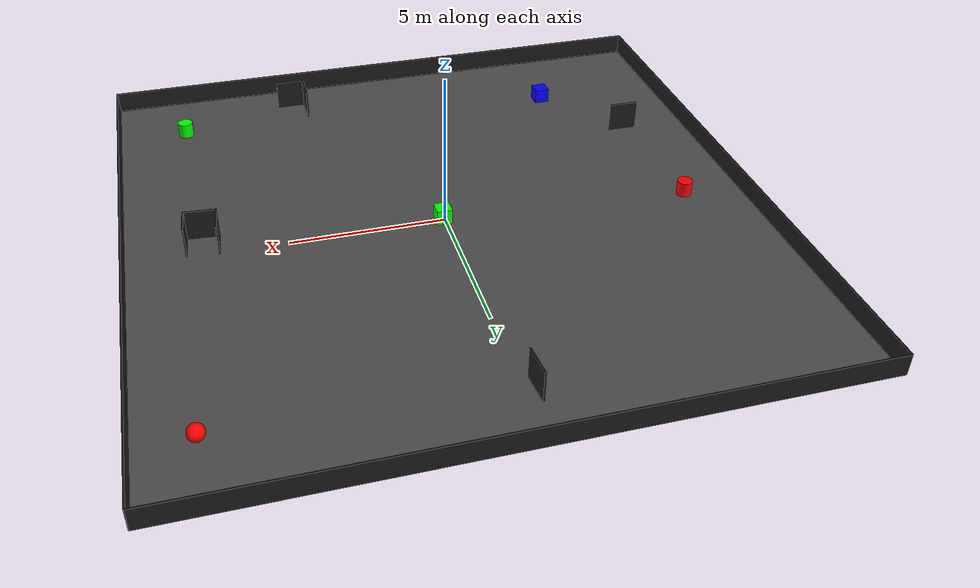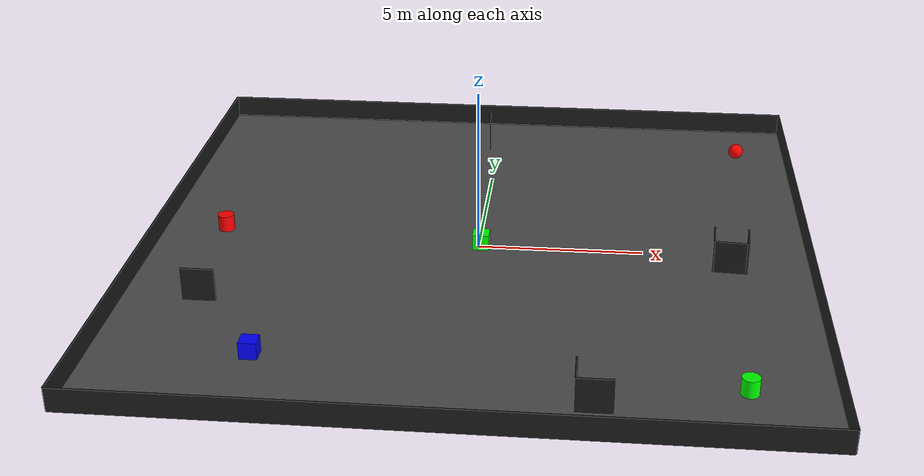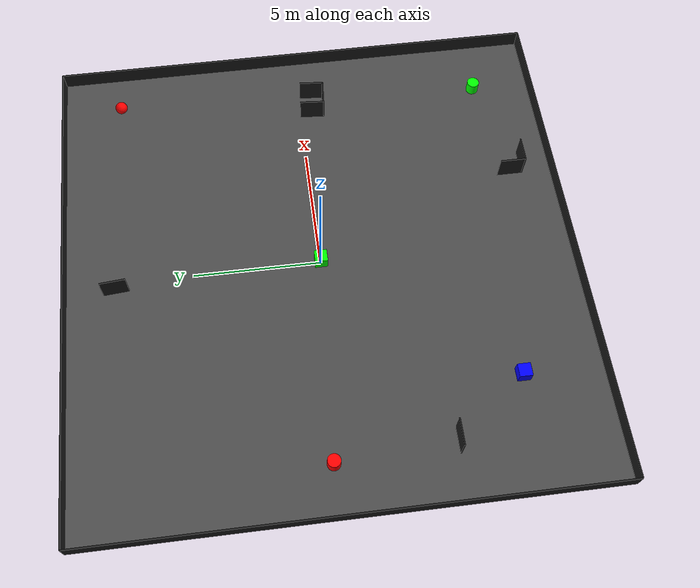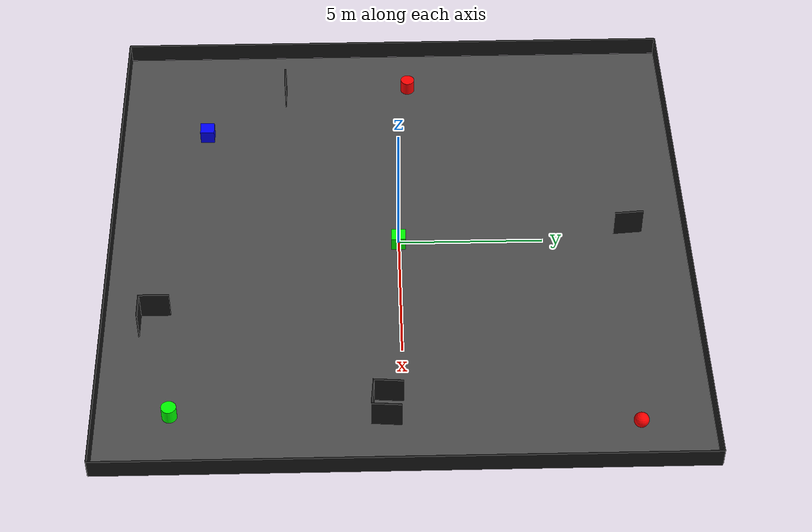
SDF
<sdf version="1.6">
 <world name="default">
  <model name="labrob_ground">
   <static>1</static>
   <link name="link">
    <collision name="collision">
     <geometry><plane><normal>0 0 1</normal><size>20 20</size></plane></geometry>
     <surface><contact><collide_bitmask>2</collide_bitmask></contact></surface>
    </collision>
    <visual name="visual">
     <cast_shadows>0</cast_shadows>
     <geometry><plane><normal>0 0 1</normal><size>20 20</size></plane></geometry>
     <material>
      <script>
       <uri>model://labrob_ground/materials/scripts/</uri>
       <uri>model://labrob_ground/materials/textures/</uri>
       <name>Labrob/AsphaltGround</name>
      </script>
     </material>
    </visual>
   </link>
  </model>
  <light name="sun" type="directional">
   <pose>0 0 10 0 -0 0</pose>
   <diffuse>0.8 0.8 0.8 1</diffuse>
   <specular>0.1 0.1 0.1 1</specular>
   <attenuation>
    <range>1000</range>
    <constant>0.9</constant>
    <linear>0.01</linear>
    <quadratic>0.001</quadratic>
   </attenuation>
   <direction>-0.5 0.5 -1</direction>
  </light>
  <model name="borders">
   <static>1</static>
   <link name="chassis_pos_x">
    <pose>10 0 0.35 0 -0 1.57079</pose>
    <collision name="collision_pos_x"><geometry><box><size>20 0.05 0.7</size></box></geometry></collision>
    <visual name="visual">
     <geometry><box><size>20 0.05 0.7</size></box></geometry>
     <material>
      <ambient>0.1 0.1 0.1 1</ambient>
      <diffuse>0.1 0.1 0.1 1</diffuse>
      <specular>0.1 0.1 0.1 1</specular>
      <emissive>0 0 0 0</emissive>
     </material>
    </visual>
    <sensor name="contact_sensor_1" type="contact">
     <plugin name="my_contact_plugin" filename="libgazebo_ros_bumper.so">
      <bumperTopicName>border_bumper</bumperTopicName>
      <frameName>world</frameName>
     </plugin>
     <contact><collision>collision_pos_x</collision><topic>__default_topic__</topic></contact>
    </sensor>
   </link>
   <link name="chassis_neg_x">
    <pose>-10 0 0.35 0 -0 1.57079</pose>
    <collision name="collision_neg_x"><geometry><box><size>20 0.05 0.7</size></box></geometry></collision>
    <visual name="visual">
     <geometry><box><size>20 0.05 0.7</size></box></geometry>
     <material>
      <ambient>0.1 0.1 0.1 1</ambient>
      <diffuse>0.1 0.1 0.1 1</diffuse>
      <specular>0.1 0.1 0.1 1</specular>
      <emissive>0 0 0 0</emissive>
     </material>
    </visual>
    <sensor name="contact_sensor_2" type="contact">
     <plugin name="my_contact_plugin" filename="libgazebo_ros_bumper.so">
      <bumperTopicName>border_bumper</bumperTopicName>
      <frameName>world</frameName>
     </plugin>
     <contact><collision>collision_neg_x</collision><topic>__default_topic__</topic></contact>
    </sensor>
   </link>
   <link name="chassis_pos_y">
    <pose>0 10 0.35 0 -0 0</pose>
    <collision name="collision_pos_y"><geometry><box><size>20 0.05 0.7</size></box></geometry></collision>
    <visual name="visual">
     <geometry><box><size>20 0.05 0.7</size></box></geometry>
     <material>
      <ambient>0.1 0.1 0.1 1</ambient>
      <diffuse>0.1 0.1 0.1 1</diffuse>
      <specular>0.1 0.1 0.1 1</specular>
      <emissive>0 0 0 0</emissive>
     </material>
    </visual>
    <sensor name="contact_sensor_3" type="contact">
     <plugin name="my_contact_plugin" filename="libgazebo_ros_bumper.so">
      <bumperTopicName>border_bumper</bumperTopicName>
      <frameName>world</frameName>
     </plugin>
     <contact><collision>collision_pos_y</collision><topic>__default_topic__</topic></contact>
    </sensor>
   </link>
   <link name="chassis_neg_y">
    <pose>0 -10 0.35 0 -0 0</pose>
    <collision name="collision_neg_y"><geometry><box><size>20 0.05 0.7</size></box></geometry></collision>
    <visual name="visual">
     <geometry><box><size>20 0.05 0.7</size></box></geometry>
     <material>
      <ambient>0.1 0.1 0.1 1</ambient>
      <diffuse>0.1 0.1 0.1 1</diffuse>
      <specular>0.1 0.1 0.1 1</specular>
      <emissive>0 0 0 0</emissive>
     </material>
    </visual>
    <sensor name="contact_sensor_4" type="contact">
     <plugin name="my_contact_plugin" filename="libgazebo_ros_bumper.so">
      <bumperTopicName>border_bumper</bumperTopicName>
      <frameName>world</frameName>
     </plugin>
     <contact><collision>collision_neg_y</collision><topic>__default_topic__</topic></contact>
    </sensor>
   </link>
  </model>
  <gravity>0 0 -9.8</gravity>
  <magnetic_field>6e-06 2.3e-05 -4.2e-05</magnetic_field>
  <atmosphere type="adiabatic"/>
  <physics name="default_physics" default="0" type="ode">
   <max_step_size>0.001</max_step_size>
   <real_time_factor>1</real_time_factor>
   <real_time_update_rate>1000</real_time_update_rate>
  </physics>
  <scene><ambient>0.4 0.4 0.4 1</ambient><background>0.7 0.7 0.7 1</background><shadows>1</shadows></scene>
  <spherical_coordinates>
   <surface_model>EARTH_WGS84</surface_model>
   <latitude_deg>0</latitude_deg>
   <longitude_deg>0</longitude_deg>
   <elevation>0</elevation>
   <heading_deg>0</heading_deg>
  </spherical_coordinates>
  <model name="barrier_1">
   <static>1</static>
   <link name="chassis">
    <pose>0 0 0.5 0 -0 0</pose>
    <collision name="barrier_collision"><geometry><box><size>1 0.05 1</size></box></geometry></collision>
    <visual name="visual">
     <geometry><box><size>1 0.05 1</size></box></geometry>
     <material>
      <ambient>0.1 0.1 0.1 1</ambient>
      <diffuse>0.1 0.1 0.1 1</diffuse>
      <specular>0.1 0.1 0.1 1</specular>
      <emissive>0 0 0 0</emissive>
     </material>
    </visual>
    <sensor name="contact_sensor_1" type="contact">
     <plugin name="my_contact_plugin" filename="libgazebo_ros_bumper.so">
      <bumperTopicName>obstacle_bumper</bumperTopicName>
      <frameName>world</frameName>
     </plugin>
     <contact><collision>barrier_collision</collision><topic>__default_topic__</topic></contact>
    </sensor>
   </link>
   <pose>-7.69751 -4.05922 0 0 -0 0</pose>
  </model>
  <model name="barrier_2">
   <static>1</static>
   <link name="chassis">
    <pose>0 0 0.5 0 -0 0</pose>
    <collision name="barrier_collision"><geometry><box><size>1 0.05 1</size></box></geometry></collision>
    <visual name="visual">
     <geometry><box><size>1 0.05 1</size></box></geometry>
     <material>
      <ambient>0.1 0.1 0.1 1</ambient>
      <diffuse>0.1 0.1 0.1 1</diffuse>
      <specular>0.1 0.1 0.1 1</specular>
      <emissive>0 0 0 0</emissive>
     </material>
    </visual>
    <collision name="barrier_collision2">
     <pose>-0.475 0.525 0 0 -0 1.57</pose>
     <geometry><box><size>1 0.05 1</size></box></geometry>
    </collision>
    <visual name="visual2">
     <pose>-0.475 0.525 0 0 -0 1.57</pose>
     <geometry><box><size>1 0.05 1</size></box></geometry>
     <material>
      <ambient>0.1 0.1 0.1 1</ambient>
      <diffuse>0.1 0.1 0.1 1</diffuse>
      <specular>0.1 0.1 0.1 1</specular>
      <emissive>0 0 0 0</emissive>
     </material>
    </visual>
    <sensor name="contact_sensor_1" type="contact">
     <plugin name="my_contact_plugin" filename="libgazebo_ros_bumper.so">
      <bumperTopicName>obstacle_bumper</bumperTopicName>
      <frameName>world</frameName>
     </plugin>
     <contact><collision>barrier_collision</collision><topic>__default_topic__</topic></contact>
    </sensor>
    <sensor name="contact_sensor_2" type="contact">
     <plugin name="my_contact_plugin" filename="libgazebo_ros_bumper.so">
      <bumperTopicName>obstacle_bumper</bumperTopicName>
      <frameName>world</frameName>
     </plugin>
     <contact><collision>barrier_collision2</collision><topic>__default_topic__</topic></contact>
    </sensor>
   </link>
   <pose>3.70115 -8.7928 0 0 -0 0</pose>
  </model>
  <model name="barrier_3">
   <static>1</static>
   <link name="chassis">
    <pose>0 0 0.5 0 -0 0</pose>
    <collision name="collision"><geometry><box><size>1 0.05 1</size></box></geometry></collision>
    <visual name="visual">
     <geometry><box><size>1 0.05 1</size></box></geometry>
     <material>
      <ambient>0.1 0.1 0.1 1</ambient>
      <diffuse>0.1 0.1 0.1 1</diffuse>
      <specular>0.1 0.1 0.1 1</specular>
      <emissive>0 0 0 0</emissive>
     </material>
    </visual>
    <collision name="collision2">
     <pose>-0.475 0.525 0 0 -0 1.57</pose>
     <geometry><box><size>1 0.05 1</size></box></geometry>
    </collision>
    <visual name="visual2">
     <pose>-0.475 0.525 0 0 -0 1.57</pose>
     <geometry><box><size>1 0.05 1</size></box></geometry>
     <material>
      <ambient>0.1 0.1 0.1 1</ambient>
      <diffuse>0.1 0.1 0.1 1</diffuse>
      <specular>0.1 0.1 0.1 1</specular>
      <emissive>0 0 0 0</emissive>
     </material>
    </visual>
    <collision name="collision3">
     <pose>0 1 0 0 -0 0</pose>
     <geometry><box><size>1 0.05 1</size></box></geometry>
    </collision>
    <visual name="visual3">
     <pose>0 1 0 0 -0 0</pose>
     <geometry><box><size>1 0.05 1</size></box></geometry>
     <material>
      <ambient>0.1 0.1 0.1 1</ambient>
      <diffuse>0.1 0.1 0.1 1</diffuse>
      <specular>0.1 0.1 0.1 1</specular>
      <emissive>0 0 0 0</emissive>
     </material>
    </visual>
    <sensor name="contact_sensor_1" type="contact">
     <plugin name="my_contact_plugin" filename="libgazebo_ros_bumper.so">
      <bumperTopicName>obstacle_bumper</bumperTopicName>
      <frameName>world</frameName>
     </plugin>
     <contact><collision>collision</collision><topic>__default_topic__</topic></contact>
    </sensor>
    <sensor name="contact_sensor_2" type="contact">
     <plugin name="my_contact_plugin" filename="libgazebo_ros_bumper.so">
      <bumperTopicName>obstacle_bumper</bumperTopicName>
      <frameName>world</frameName>
     </plugin>
     <contact><collision>collision2</collision><topic>__default_topic__</topic></contact>
    </sensor>
    <sensor name="contact_sensor_3" type="contact">
     <plugin name="my_contact_plugin" filename="libgazebo_ros_bumper.so">
      <bumperTopicName>obstacle_bumper</bumperTopicName>
      <frameName>world</frameName>
     </plugin>
     <contact><collision>collision3</collision><topic>__default_topic__</topic></contact>
    </sensor>
   </link>
   <pose>8.10458 -0.573546 0 0 -0 1.49566</pose>
  </model>
  <model name="cube_blue">
   <static>1</static>
   <link name="chassis">
    <pose>0 0 0.25 0 -0 0</pose>
    <collision name="collision"><geometry><box><size>0.5 0.5 0.5</size></box></geometry></collision>
    <visual name="visual">
     <geometry><box><size>0.5 0.5 0.5</size></box></geometry>
     <material>
      <ambient>0 0 1 1</ambient>
      <diffuse>0 0 1 1</diffuse>
      <specular>0.1 0.1 0.1 1</specular>
      <emissive>0 0 0 0</emissive>
     </material>
    </visual>
   </link>
   <pose>-5.53346 -6.89133 0 0 -0 0</pose>
  </model>
  <model name="cylinder_green">
   <static>1</static>
   <link name="chassis">
    <pose>0 0 0.25 0 -0 0</pose>
    <collision name="collision">
     <geometry><cylinder><radius>0.25</radius><length>0.5</length></cylinder></geometry>
    </collision>
    <visual name="visual">
     <geometry><cylinder><radius>0.25</radius><length>0.5</length></cylinder></geometry>
     <material>
      <ambient>0 1 0 1</ambient>
      <diffuse>0 1 0 1</diffuse>
      <specular>0.1 0.1 0.1 1</specular>
      <emissive>0 0 0 0</emissive>
     </material>
    </visual>
   </link>
   <pose>7.67983 -7.57182 0 0 -0 0</pose>
  </model>
  <model name="cylinder_red">
   <static>1</static>
   <link name="chassis">
    <pose>0 0 0.25 0 -0 0</pose>
    <collision name="collision">
     <geometry><cylinder><radius>0.25</radius><length>0.5</length></cylinder></geometry>
    </collision>
    <visual name="visual">
     <geometry><cylinder><radius>0.25</radius><length>0.5</length></cylinder></geometry>
     <material>
      <ambient>1 0 0 1</ambient>
      <diffuse>1 0 0 1</diffuse>
      <specular>0.1 0.1 0.1 1</specular>
      <emissive>0 0 0 0</emissive>
     </material>
    </visual>
   </link>
   <pose>-8.03965 0.505142 0 0 -0 0</pose>
  </model>
  <model name="sphere_red">
   <static>1</static>
   <link name="chassis">
    <pose>0 0 0.25 0 -0 0</pose>
    <collision name="collision"><geometry><sphere><radius>0.25</radius></sphere></geometry></collision>
    <visual name="visual">
     <geometry><sphere><radius>0.25</radius></sphere></geometry>
     <material>
      <ambient>1 0 0 1</ambient>
      <diffuse>1 0 0 1</diffuse>
      <specular>0.1 0.1 0.1 1</specular>
      <emissive>0 0 0 0</emissive>
     </material>
    </visual>
   </link>
   <pose>8.33201 7.59718 0 0 -0 0</pose>
  </model>
  <model name="cube_green">
   <static>1</static>
   <link name="chassis">
    <pose>0 0 0.25 0 -0 0</pose>
    <collision name="collision"><geometry><box><size>0.5 0.5 0.5</size></box></geometry></collision>
    <visual name="visual">
     <geometry><box><size>0.5 0.5 0.5</size></box></geometry>
     <material>
      <ambient>0 1 0 1</ambient>
      <diffuse>0 1 0 1</diffuse>
      <specular>0.1 0.1 0.1 1</specular>
      <emissive>0 0 0 0</emissive>
     </material>
    </visual>
   </link>
   <pose>0.071482 -0.013571 0 0 -0 0</pose>
  </model>
  <model name="barrier_1_0">
   <static>1</static>
   <link name="chassis">
    <pose>0 0 0.5 0 -0 0</pose>
    <collision name="barrier_collision"><geometry><box><size>1 0.05 1</size></box></geometry></collision>
    <visual name="visual">
     <geometry><box><size>1 0.05 1</size></box></geometry>
     <material>
      <ambient>0.1 0.1 0.1 1</ambient>
      <diffuse>0.1 0.1 0.1 1</diffuse>
      <specular>0.1 0.1 0.1 1</specular>
      <emissive>0 0 0 0</emissive>
     </material>
    </visual>
    <sensor name="contact_sensor_1" type="contact">
     <plugin name="my_contact_plugin" filename="libgazebo_ros_bumper.so">
      <bumperTopicName>obstacle_bumper</bumperTopicName>
      <frameName>world</frameName>
     </plugin>
     <contact><collision>barrier_collision</collision><topic>__default_topic__</topic></contact>
    </sensor>
   </link>
   <pose>-0.339515 8.02536 0 0 0 -1.4871</pose>
  </model>
 </world>
</sdf>
